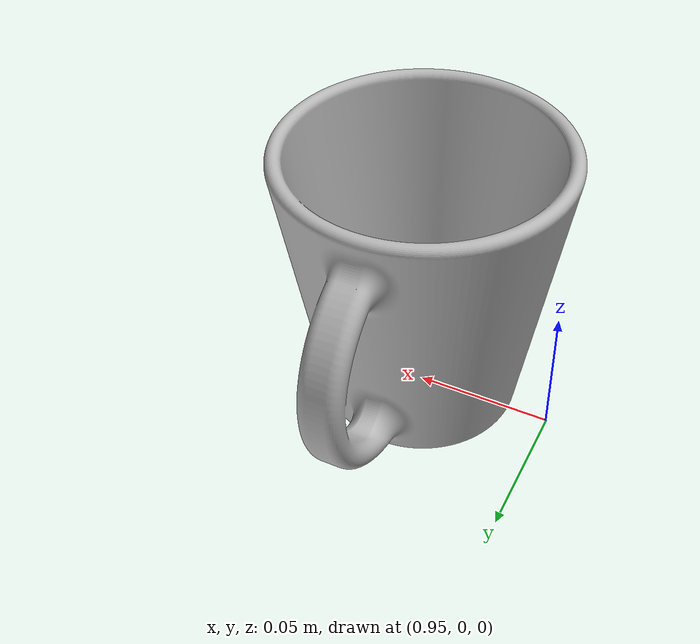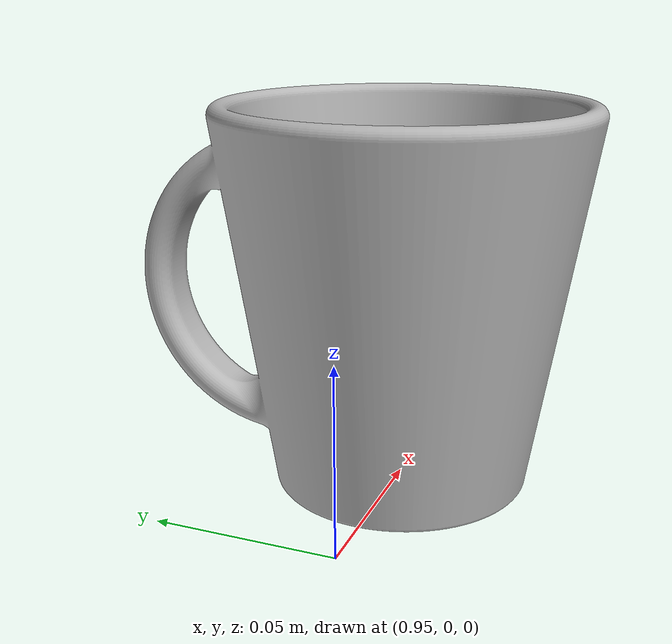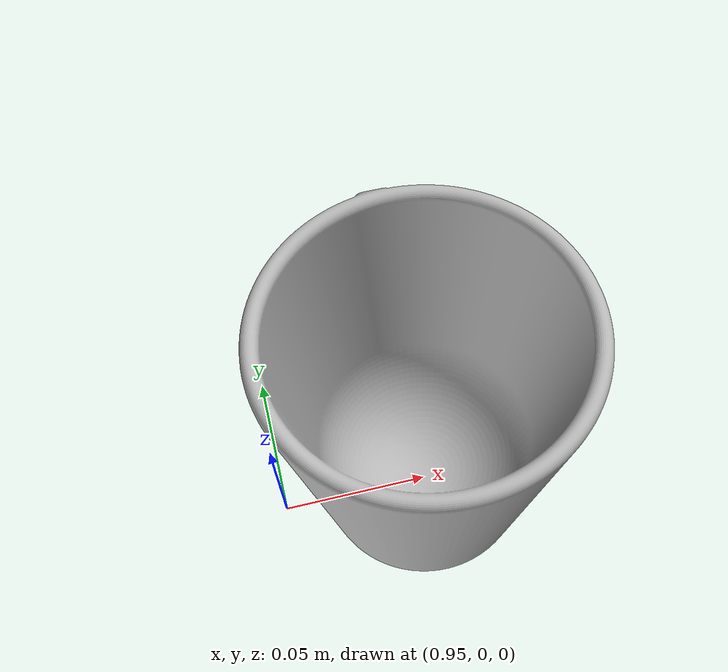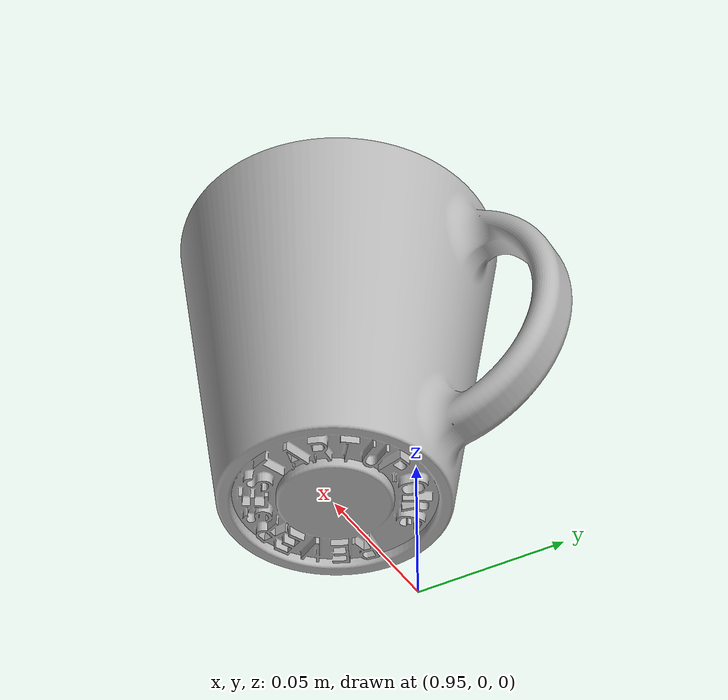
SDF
<?xml version="1.0" ?>
<sdf version="1.4">
  <model name="mpnet_coffee">
    <pose frame="world">1 0 0.0 1.57079632679 0 0</pose>
    <static>true</static>
    <link name="link">
      <inertial>
        <mass>0.1</mass>
      </inertial>
      <visual name="visual">
        <geometry>
          <mesh>
            <uri>model://mpnet_coffee/meshes/coffee.stl</uri>
            <scale>0.035 0.035 0.035</scale>
          </mesh>
        </geometry>
      </visual>
    </link>
  </model>
</sdf>
